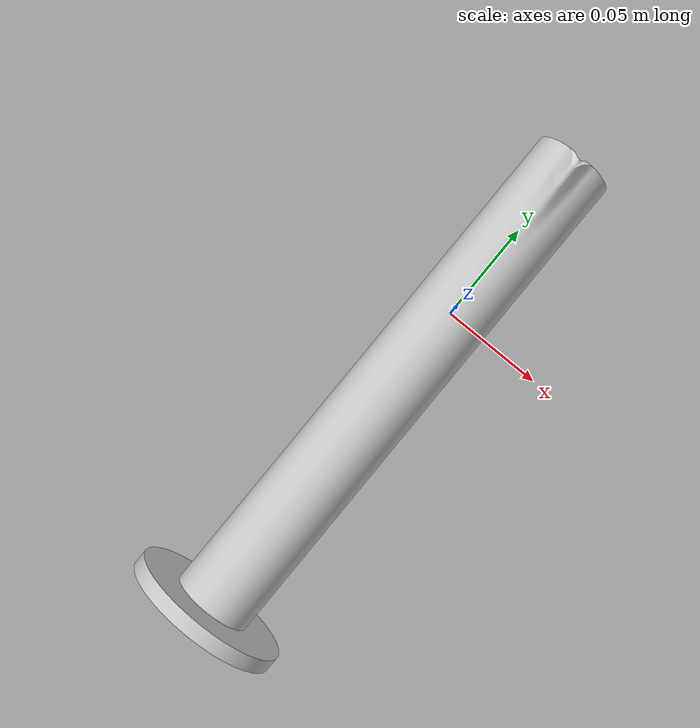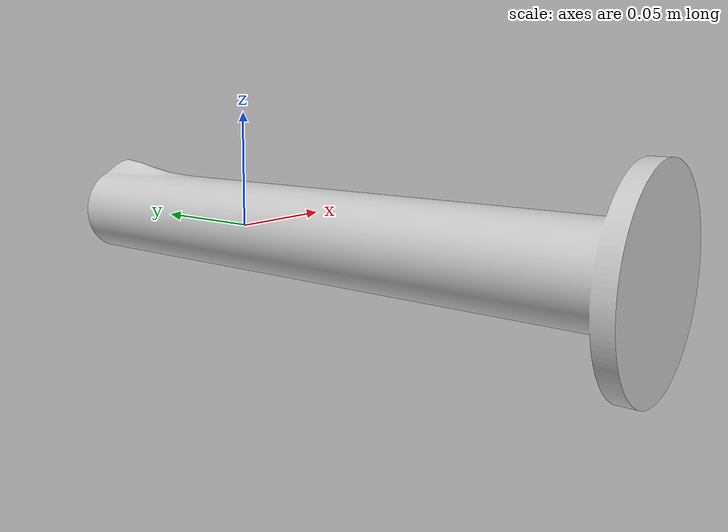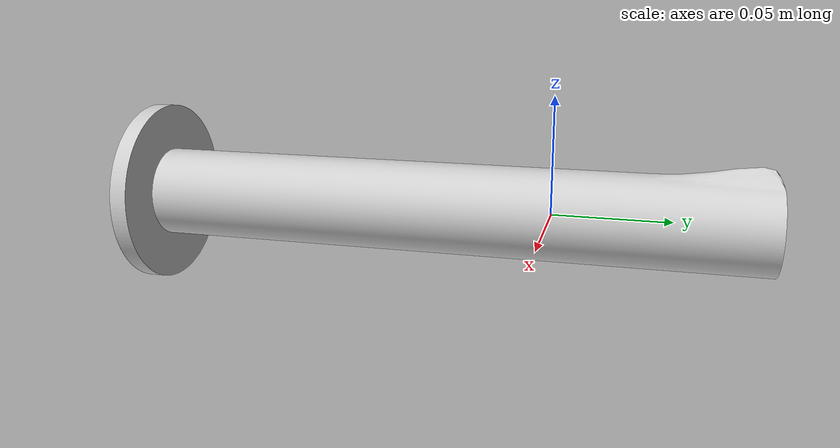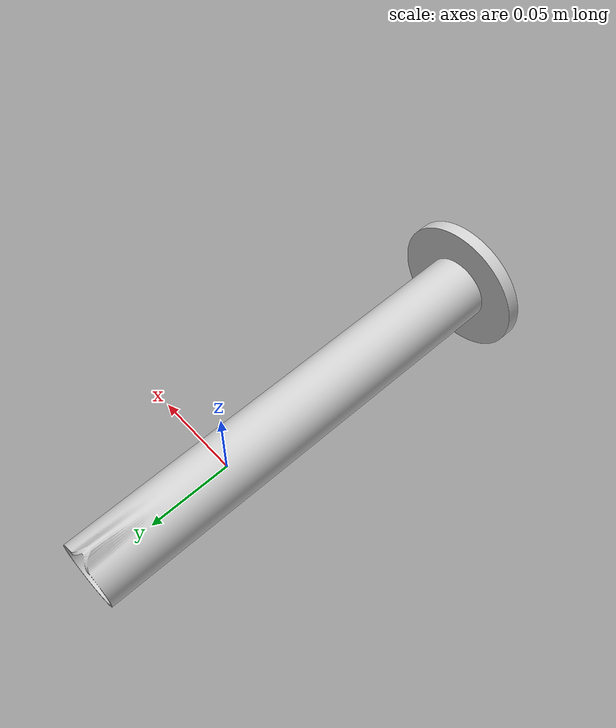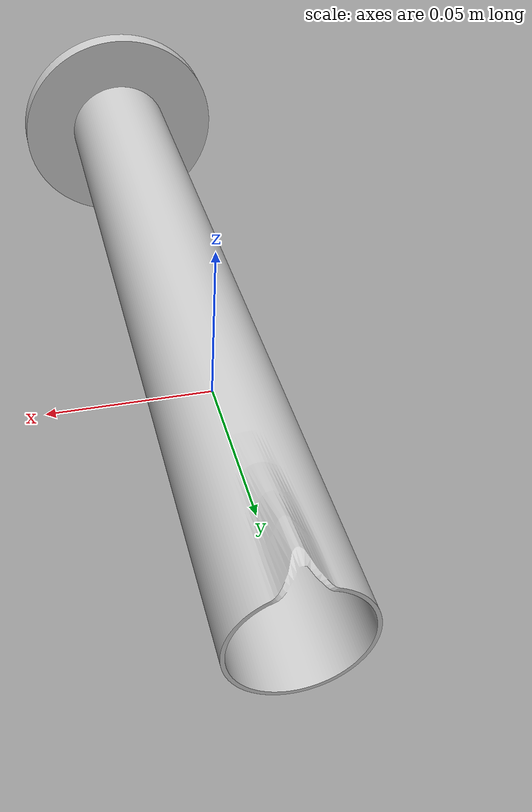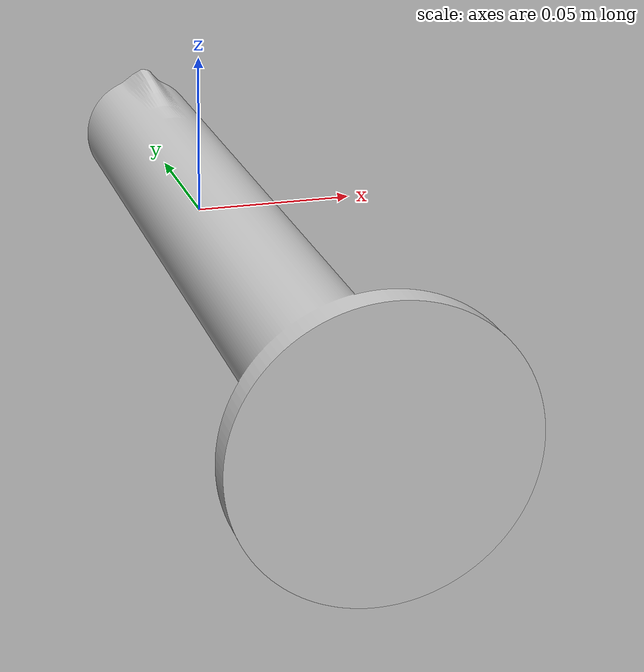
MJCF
<mujoco model="flat_base_tube">
  <default>
    <default class="visual">
      <geom group="2" type="mesh" contype="0" conaffinity="0"/>
    </default>
    <default class="collision">
      <geom group="3" type="mesh"/>
    </default>
  </default>
  <asset>
    <material name="Material.001" specular="0.5" shininess="0.36" rgba="0.800000 0.800000 0.800000 1.000000"/>
    <material name="Material.003" specular="0.5" shininess="0.36" rgba="0.800000 0.800000 0.800000 1.000000"/>
    <mesh file="flat_base_tube_0.obj"/>
    <mesh file="flat_base_tube_1.obj"/>
    <mesh file="flat_base_tube_collision_0.obj"/>
    <mesh file="flat_base_tube_collision_1.obj"/>
    <mesh file="flat_base_tube_collision_2.obj"/>
    <mesh file="flat_base_tube_collision_3.obj"/>
    <mesh file="flat_base_tube_collision_4.obj"/>
    <mesh file="flat_base_tube_collision_5.obj"/>
    <mesh file="flat_base_tube_collision_6.obj"/>
    <mesh file="flat_base_tube_collision_7.obj"/>
    <mesh file="flat_base_tube_collision_8.obj"/>
  </asset>
  <worldbody>
    <body name="flat_base_tube">
      <geom mesh="flat_base_tube_0" material="Material.003" class="visual"/>
      <geom mesh="flat_base_tube_1" material="Material.001" class="visual"/>
      <geom mesh="flat_base_tube_collision_0" rgba="0.7499387651907238 0.6998080690093436 0.9652433503147253 1" class="collision"/>
      <geom mesh="flat_base_tube_collision_1" rgba="0.9000893005669067 0.4636787889756254 0.006058016755559725 1" class="collision"/>
      <geom mesh="flat_base_tube_collision_2" rgba="0.7517634491595898 0.10736113379038092 0.6232837850869384 1" class="collision"/>
      <geom mesh="flat_base_tube_collision_3" rgba="0.0971133640903834 0.9339431935326228 0.2330281499254684 1" class="collision"/>
      <geom mesh="flat_base_tube_collision_4" rgba="0.63780017125349 0.8659478654551477 0.5703740517374029 1" class="collision"/>
      <geom mesh="flat_base_tube_collision_5" rgba="0.7441686091753699 0.8296910210738995 0.6169357095601061 1" class="collision"/>
      <geom mesh="flat_base_tube_collision_6" rgba="0.9039648740374145 0.552411828141512 0.7232916558672436 1" class="collision"/>
      <geom mesh="flat_base_tube_collision_7" rgba="0.576483489994459 0.02357915113690745 0.94969017967464 1" class="collision"/>
      <geom mesh="flat_base_tube_collision_8" rgba="0.5655130314114319 0.7480666294622088 0.5495060459362585 1" class="collision"/>
    </body>
  </worldbody>
</mujoco>
